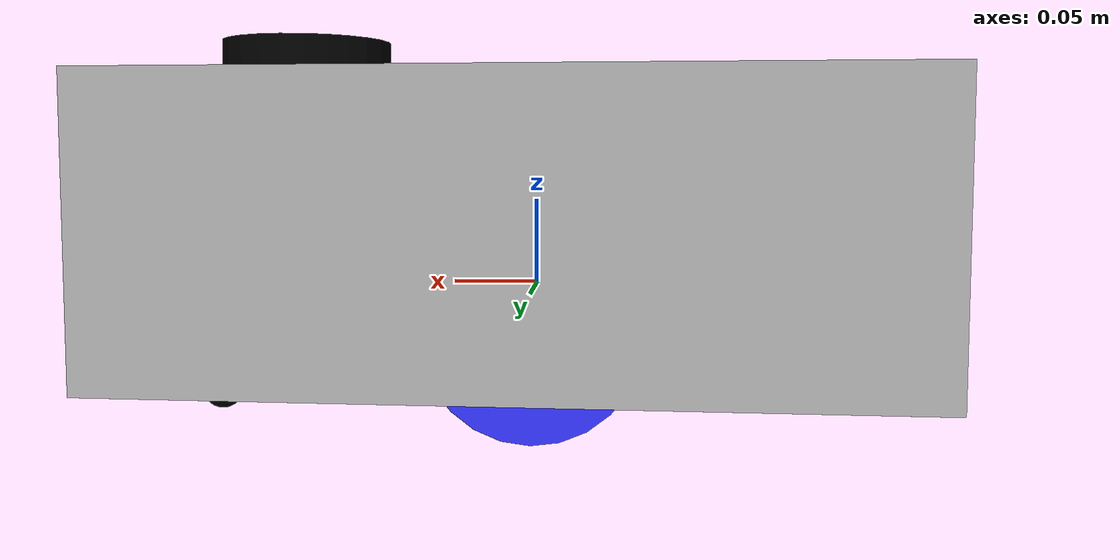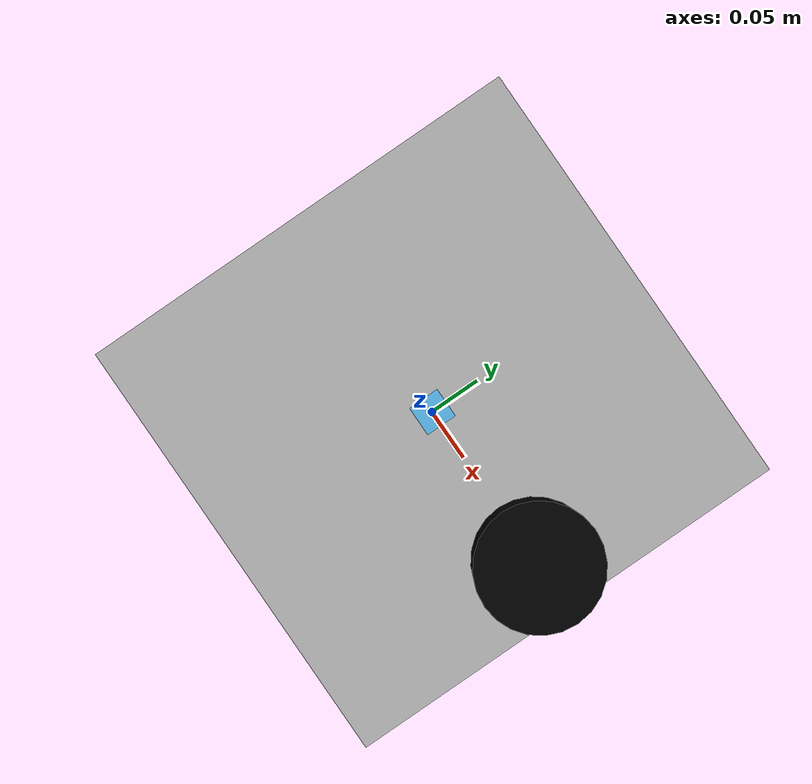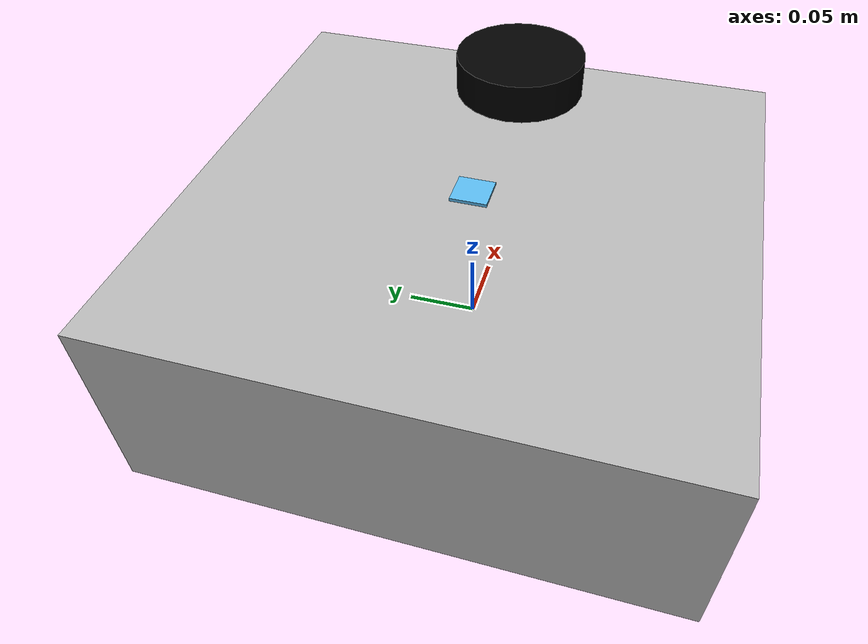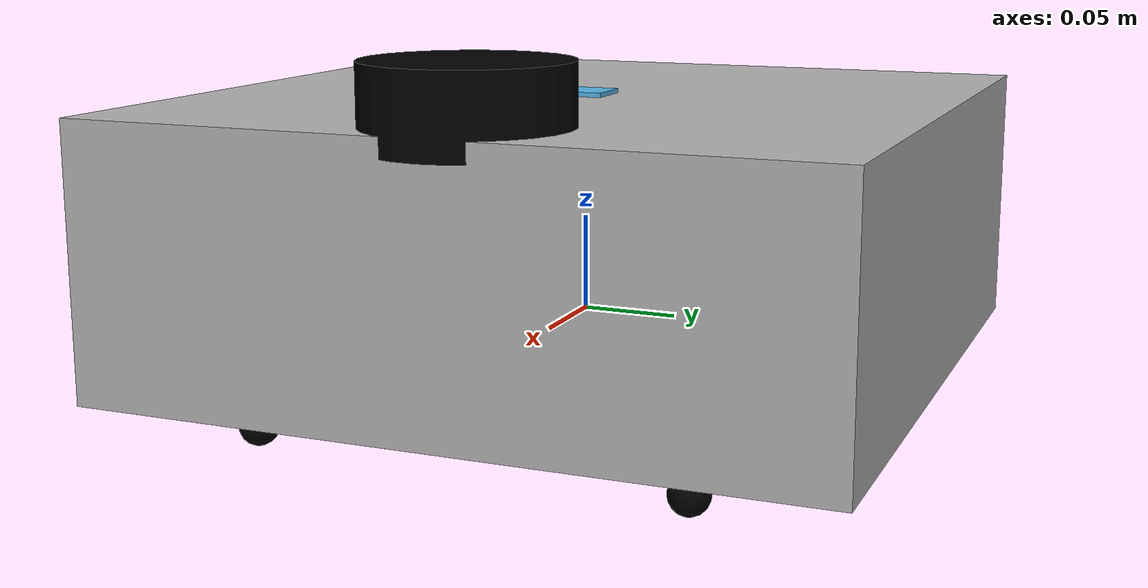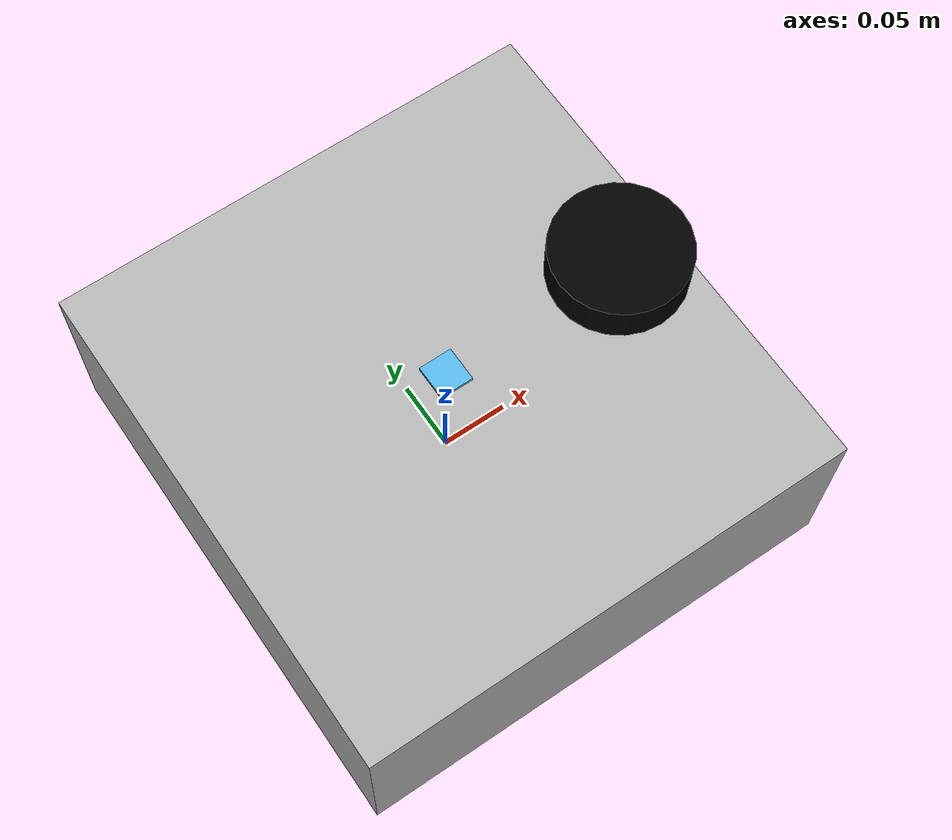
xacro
<?xml version="1.0"?>
<robot xmlns:xacro="https://www.ros.org/wiki/xacro" name="my_robot">

    <xacro:arg name="use_ros2_control" default="true"/>

    <xacro:include filename="robot_core.xacro"/>
    <xacro:include filename="lidar.xacro"/>
    <xacro:include filename="imu.xacro"/>

    <xacro:if value="$(arg use_ros2_control)">
        <xacro:include filename="ros2_control.xacro"/>
    </xacro:if>
    <xacro:unless value="$(arg use_ros2_control)">
        <xacro:include filename="gazebo_control.xacro"/>
    </xacro:unless>

</robot>

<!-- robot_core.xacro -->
<robot xmlns:xacro="http://www.ros.org/wiki/xacro"  name="robot">

    <xacro:include filename="inertial_macros.xacro"/>

    <!-- PARAMETERS -->

    <!-- CHASSIS PARAMETERS -->
    <xacro:property name="chassis_length" value="0.370"/>
    <xacro:property name="chassis_width" value="0.380"/>
    <xacro:property name="chassis_height" value="0.140"/>
    <xacro:property name="chassis_mass" value="1.0"/>

    <!-- OFFSET PARAMETERS -->
    <xacro:property name="wheel_offset_x" value="0.285"/>
    <xacro:property name="wheel_offset_y" value="0.148"/>
    <xacro:property name="wheel_offset_z" value="0.005"/>

    <!-- WHEELS PARAMETERS -->
    <xacro:property name="wheel_radius" value="0.05"/>
    <xacro:property name="wheel_thickness" value="0.026"/>
    <xacro:property name="wheel_mass" value="0.05"/>

    <!-- CASTER WHEEL PARAMETERS -->
    <xacro:property name="caster_wheel_radius" value="0.01"/>
    <xacro:property name="caster_wheel_mass" value="0.01"/>

    <!-- CASTER WHEEL OFFSET PARAMTERS -->
    <xacro:property name="caster_wheel_offset_x" value="0.13"/>
    <xacro:property name="caster_wheel_offset_y" value="0.11"/>
    <xacro:property name="caster_wheel_offset_z" value="${wheel_offset_z - wheel_radius + caster_wheel_radius}"/>

    <!-- XACRO COLORS -->
    <material name="white">
        <color rgba="1 1 1 1"/>
    </material>

    <material name="orange">
        <color rgba="1 0.3 0.1 1"/>
    </material>

    <material name="grey">
        <color rgba="0.2 0.2 0.2 1.0"/>
    </material>

    <material name="green">
        <color rgba="0 0.8 0 1.0"/>
    </material>

    <material name="blue">
        <color rgba="0.2 0.2 1 1"/>
    </material>

    <material name="black">
        <color rgba="0 0 0 1"/>
    </material>

    <material name="red">
        <color rgba="1 0 0 1"/>
    </material>

    <material name="silver">
        <color rgba="0.7 0.7 0.7 1.0"/>
    </material>

    <!-- BASE LINK -->
    <link name="base_link">
    </link>

    <!-- BASE FOOTPRINT JOINT -->
    <joint name="base_footprint_joint" type="fixed">
        <parent link="base_link"/>
        <child link="base_footprint"/>
        <origin xyz="0 0 0" rpy="0 0 0"/>
    </joint>

    <!-- BASE FOOTPRINT LINK -->
    <link name="base_footprint">
    </link>

    <!-- CHASSIS JOINT -->
    <joint name="chassis_joint" type="fixed">
        <parent link="base_link"/>
        <child link="chassis"/>
        <origin xyz="0 0 ${-wheel_offset_z}"/>
    </joint>

    <!-- CHASSIS LINK -->
    <link name="chassis">

        <!-- VISUAL -->
        <visual>
            <origin xyz="0 0 0.05"/>
            <geometry>
                <box size="${chassis_length} ${chassis_width} ${chassis_height}"/>
            </geometry>
            <material name="silver"/>
        </visual>

        <!-- COLLISION -->
        <collision>
            <origin xyz="0 0 ${chassis_height}"/>
            <geometry>
                <box size="${chassis_length} ${chassis_width} ${chassis_height}"/>
            </geometry>
        </collision>

        <!-- INERTIA -->
        <xacro:inertial_box mass="${chassis_mass}" x="${chassis_length}" y="${chassis_width}" z="${chassis_height}">
            <origin xyz="0 0 ${chassis_height/2}" rpy="0 0 0"/>
        </xacro:inertial_box>

    </link>

    <!-- GAZEBO CHASSIS -->
    <gazebo reference="chassis">
        <material>Gazebo/Silver</material>
    </gazebo>

    <!-- LEFT WHEEL JOINT -->

    <joint name="left_wheel_joint" type="continuous">
        <parent link="base_link"/>
        <child link="left_wheel"/>
        <origin xyz="-0.01 ${wheel_offset_y} 0" rpy="-${pi/2} 0 0" />
        <axis xyz="0 0 1"/>
    </joint>

    <!-- LEFT WHEEL LINK -->

    <link name="left_wheel">

        <!-- VISUAL -->
        <visual>
            <geometry>
                <cylinder radius="${wheel_radius}" length="${wheel_thickness}"/>
            </geometry>
            <material name="blue"/>
        </visual>

        <!-- COLLISION -->
        <collision>
            <geometry>
                <sphere radius="${wheel_radius}"/>
            </geometry>
        </collision>

        <!-- INERTIA -->
        <xacro:inertial_cylinder mass="${wheel_mass}" length="${wheel_thickness}" radius="${wheel_radius}">
            <origin xyz="0 0 0" rpy="0 0 0"/>
        </xacro:inertial_cylinder>

    </link>

    <!-- GAZEBO LEFT WHEEL -->
    <gazebo reference="left_wheel">
        <material>Gazebo/Blue</material>
    </gazebo>

    <!-- RIGHT WHEEL JOINT -->
    <joint name="right_wheel_joint" type="continuous">
        <parent link="base_link"/>
        <child link="right_wheel"/>
        <origin xyz="-0.01 ${-wheel_offset_y} 0" rpy="${pi/2} 0 0"/>
        <axis xyz="0 0 -1"/>
    </joint>

    <!-- RIGHT WHEEL LINK -->
    <link name="right_wheel">

        <!-- VISUAL -->
        <visual>
            <geometry>
                <cylinder radius="${wheel_radius}" length="${wheel_thickness}"/>
            </geometry>
            <material name="blue"/>
        </visual>

        <!-- COLLISION -->
        <collision>
            <geometry>
                <sphere radius="${wheel_radius}"/>
            </geometry>
        </collision>

        <!-- INERTIA -->
        <xacro:inertial_cylinder mass="${wheel_mass}" length="${wheel_thickness}" radius="${wheel_radius}">
            <origin xyz="0 0 0" rpy="0 0 0"/>
        </xacro:inertial_cylinder>

    </link>

    <!-- GAZEBO RIGHT WHEEL -->
    <gazebo reference="right_wheel">
        <material>Gazebo/Blue</material>
    </gazebo>

    <!-- REAR CASTER WHEEL -->

    <!-- REAR CASTER WHEEL JOINT -->
    <joint name="rear_caster_wheel_joint" type="fixed">
        <parent link="base_link"/>
        <child link="rear_caster_wheel"/>
        <origin xyz="${-caster_wheel_offset_x} 0 ${caster_wheel_offset_z}"/>
    </joint>

    <!-- REAR CASTER WHEEL LINK -->
    <link name="rear_caster_wheel">
        <!-- VISUAL -->
        <visual>
            <geometry>
                <sphere radius="${caster_wheel_radius}"/>
            </geometry>
            <material name="black"/>
        </visual>

        <!-- COLLISION -->
        <collision>
            <geometry>
                <sphere radius="${caster_wheel_radius}"/>
            </geometry>
        </collision>

        <!-- INERTIA -->
        <xacro:inertial_sphere mass="${caster_wheel_mass}" radius="${caster_wheel_radius}">
            <origin xyz="0 0 0" rpy="0 0 0"/>
        </xacro:inertial_sphere>
    </link>

    <!-- GAZEBO REAR CASTER WHEEL -->
    <gazebo reference="rear_caster_wheel">
        <material>Gazebo/Black</material>
        <mu1 value="0.001"/>
        <mu2 value="0.001"/>
    </gazebo>

    <!-- LEFT CASTER WHEEL  -->

    <joint name="left_caster_wheel_joint" type="fixed">
        <parent link="chassis"/>
        <child link="left_caster_wheel"/>
        <origin xyz="0.15 ${caster_wheel_offset_y} ${caster_wheel_offset_z}"/>
    </joint>

    <!-- LEFT CASTER WHEEL LINK -->
    <link name="left_caster_wheel">
        <!-- VISUAL -->
        <visual>
            <geometry>
                <sphere radius="${caster_wheel_radius}"/>
            </geometry>
            <material name="black"/>
        </visual>

        <!-- COLLISION -->
        <collision>
            <geometry>
                <sphere radius="${caster_wheel_radius}"/>
            </geometry>
        </collision>

        <!-- INERTIA -->
        <xacro:inertial_sphere mass="${caster_wheel_mass}" radius="${caster_wheel_radius}">
            <origin xyz="0 0 0" rpy="0 0 0"/>
        </xacro:inertial_sphere>

    </link>

    <!-- GAZEBO LEFT CASTER WHEEL -->
    <gazebo reference="left_caster_wheel">
        <material>Gazebo/Black</material>
        <mu1 value="0.001"/>
        <mu2 value="0.001"/>
    </gazebo>

    <!-- RIGHT CASTER WHEEL 2 -->

    <joint name="right_caster_wheel_joint" type="fixed">
        <parent link="base_link"/>
        <child link="right_caster_wheel"/>
        <origin xyz="0.15 ${-caster_wheel_offset_y} ${caster_wheel_offset_z}"/>
    </joint>

    <!-- REAR CASTER WHEEL LINK -->
    <link name="right_caster_wheel">
        <!-- VISUAL -->
        <visual>
            <geometry>
                <sphere radius="${caster_wheel_radius}"/>
            </geometry>
            <material name="black"/>
        </visual>

        <!-- COLLISION -->
        <collision>
            <geometry>
                <sphere radius="${caster_wheel_radius}"/>
            </geometry>
        </collision>

        <!-- INERTIA -->
        <xacro:inertial_sphere mass="${caster_wheel_mass}" radius="${caster_wheel_radius}">
            <origin xyz="0 0 0" rpy="0 0 0"/>
        </xacro:inertial_sphere>
    </link>

    <!-- GAZEBO RIGHT CASTER WHEEL -->
    <gazebo reference="right_caster_wheel">
        <material>Gazebo/Black</material>
        <mu1 value="0.001"/>
        <mu2 value="0.001"/>
    </gazebo>

</robot>

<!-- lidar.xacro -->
<robot xmlns:xacro="http://www.ros.org/wiki/xacro">
    <link name="laser">
        <visual>
            <geometry>
                <cylinder radius="0.05" length="0.04"/>
            </geometry>
            <material name="black"/>
        </visual>
        <collision>
            <geometry>
                <cylinder radius="0.05" length="0.004"/>
            </geometry>
        </collision>
        <xacro:inertial_cylinder mass="0.1" length="0.04" radius="0.05">
            <origin xyz="0 0 0" rpy="0 0 0"/>
        </xacro:inertial_cylinder>
    </link>

    <joint name="laser_joint" type="fixed">
        <parent link="chassis"/>
        <child link="laser"/>
        <origin xyz="0.140 0.0 0.13" rpy="0.0 0.0 0"/>
    </joint>

    <gazebo reference="laser">
        <material>Gazebo/Black</material>

        <sensor name="laser" type="ray">
            <pose> 0 0 0 0 0 0 </pose>
            <visualize>true</visualize>
            <update_rate>10</update_rate>
            <ray>
                <scan>
                    <horizontal>
                        <samples>360</samples>
                        <min_angle>-3.14</min_angle>
                        <max_angle>3.14</max_angle>
                    </horizontal>
                </scan>
                <range>
                    <min>0.3</min>
                    <max>12</max>
                </range>
            </ray>
            <plugin name="laser_controller" filename="libgazebo_ros_ray_sensor.so">
                <ros>
                    <argument>~/out:=scan</argument>
                </ros>
                <output_type>sensor_msgs/LaserScan</output_type>
                <frame_name>laser</frame_name>
            </plugin>
        </sensor>
    </gazebo>
</robot>

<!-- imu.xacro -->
<robot xmlns:xacro="http://www.ros.org/wiki/xacro">

    <link name="imu_link">
        <visual>
          <geometry>
            <box size="0.025 0.026 0.0048"/>
          </geometry>
        </visual>

        <collision>
          <geometry>
            <box size="0.025 0.026 0.0048"/>
          </geometry>
        </collision>

      </link>

      <joint name="imu_joint" type="fixed">
        <parent link="base_link"/>
        <child link="imu_link"/>
        <origin xyz="0 0 0.115"/>
      </joint>
</robot>
